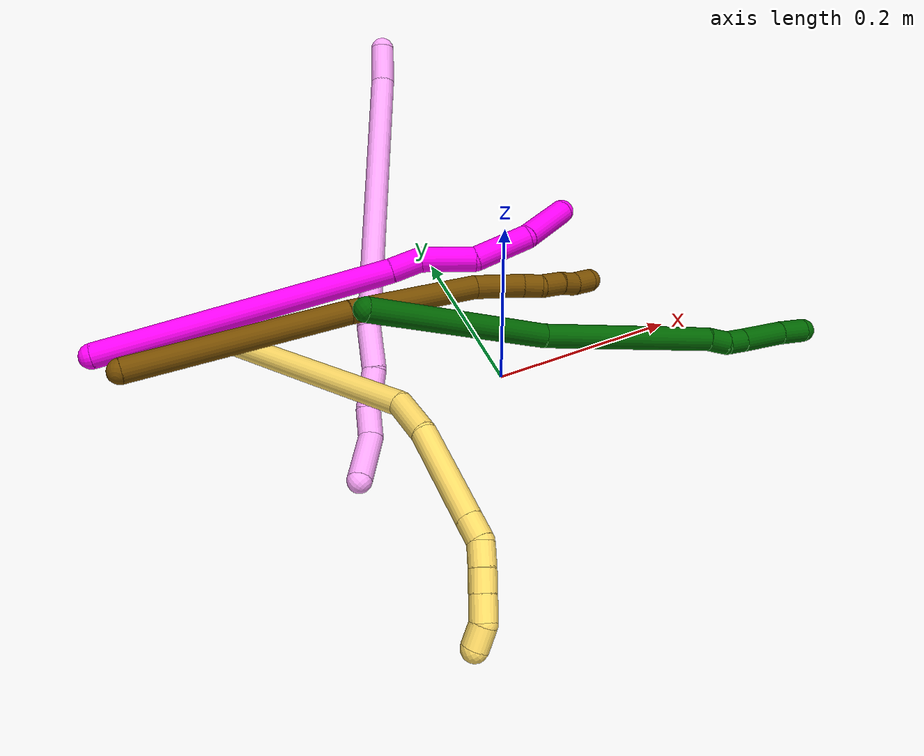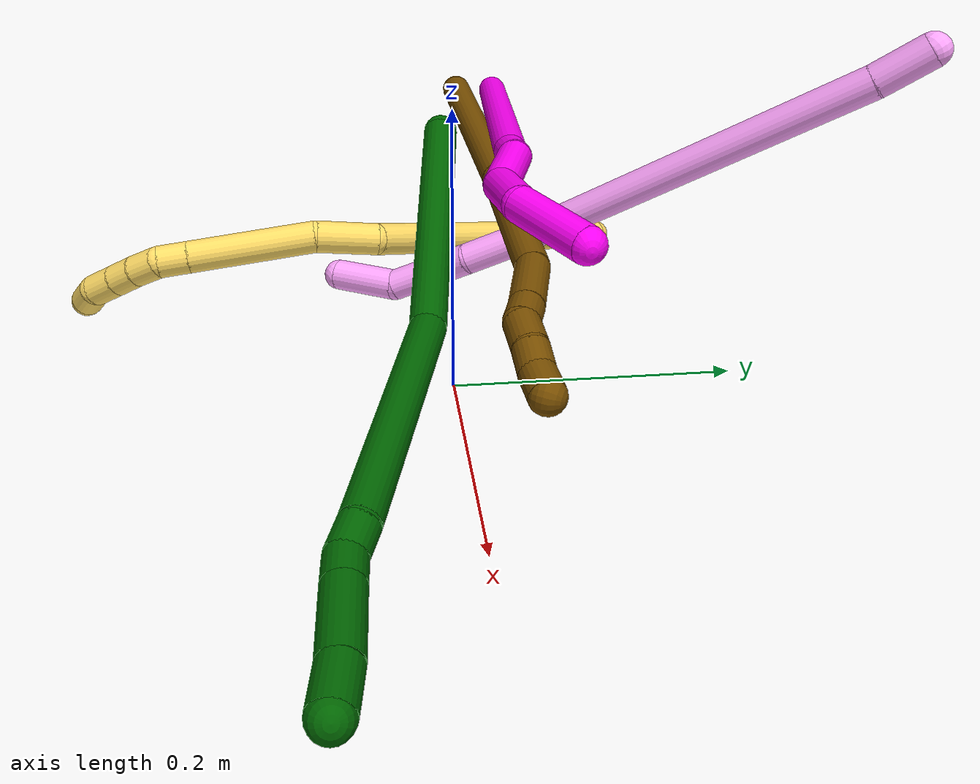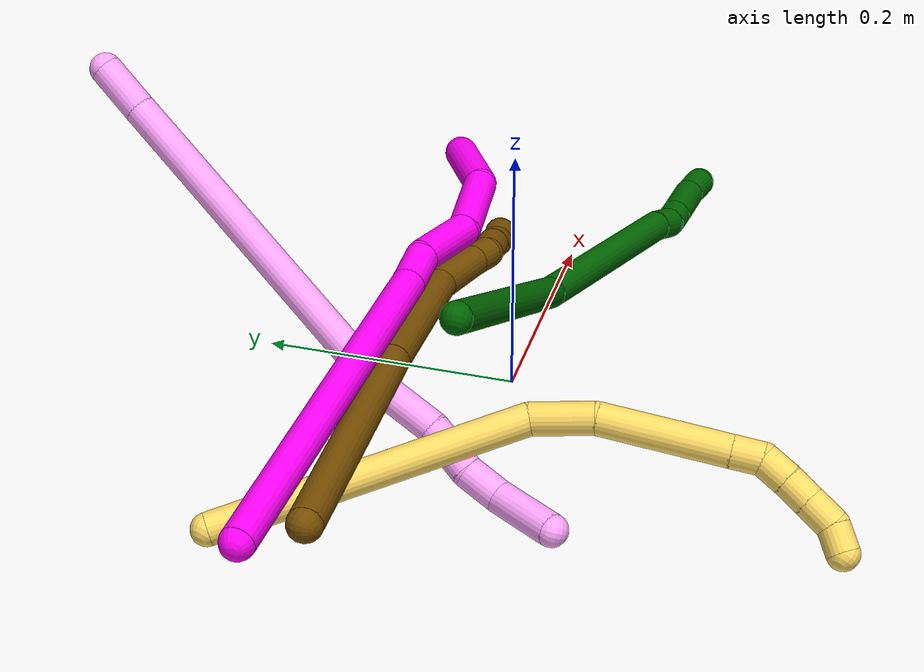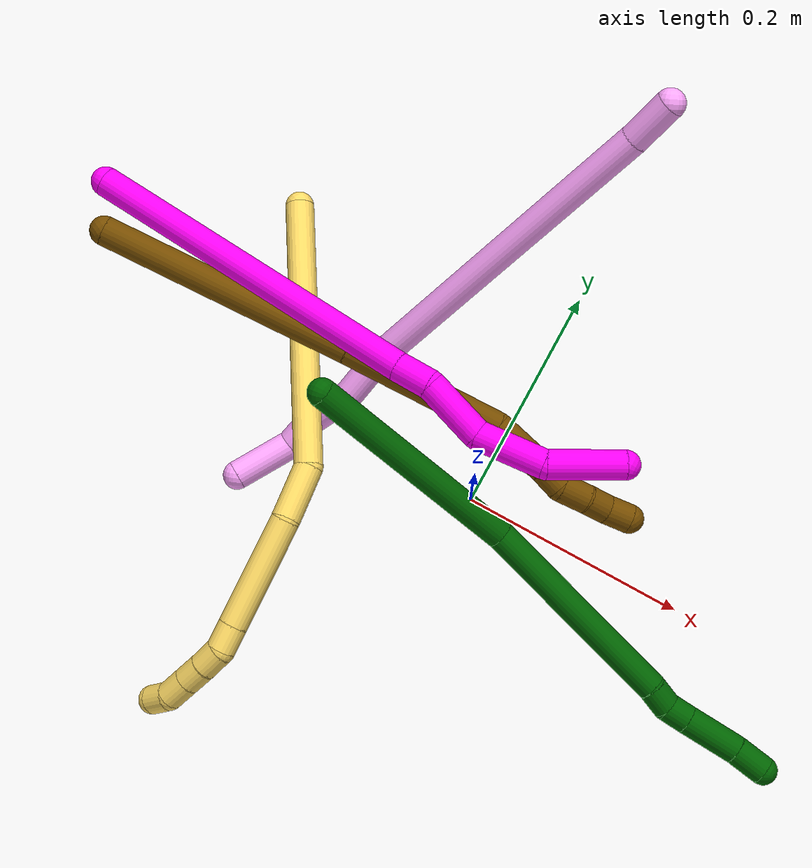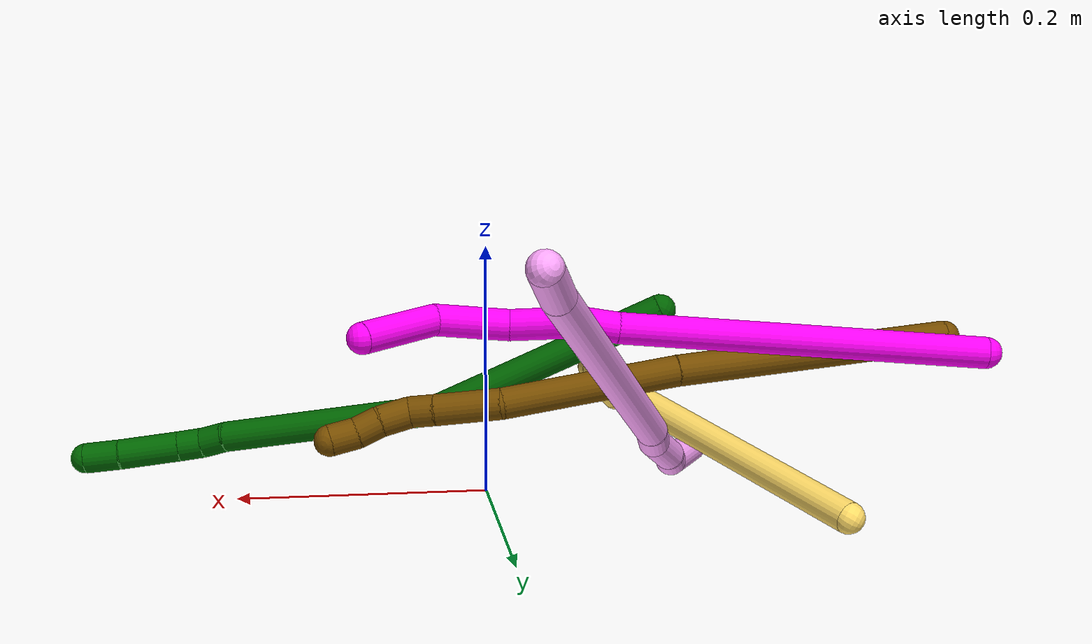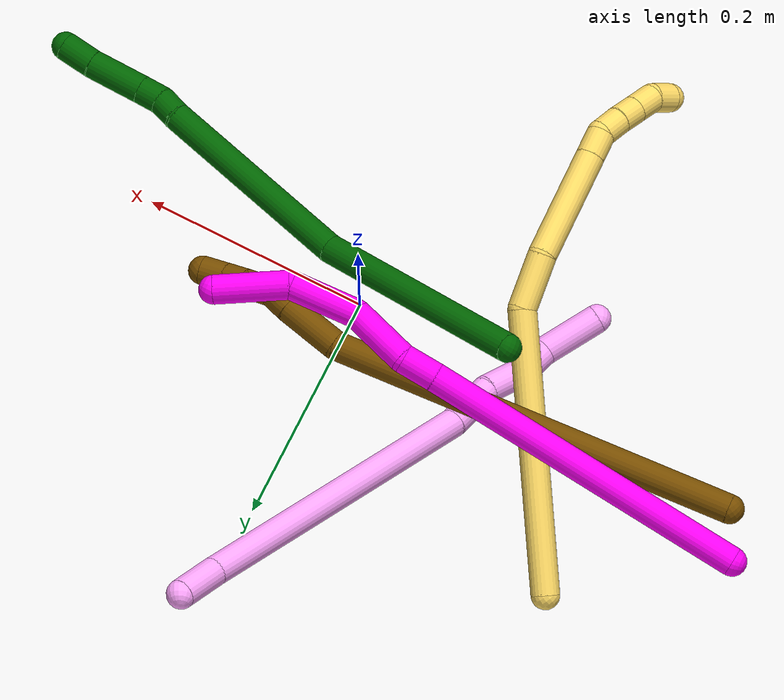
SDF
<sdf version="1.7">
 <world name="default">
  <model name="4">
   <static>0</static>
   <link name="4">
    <collision name="collision-cylinder-e_1_1_4">
     <pose>-0.008717 -0.010937 -0.015253 2.51955 -0.434778 -1.20406</pose>
     <geometry><cylinder><radius>0.0125</radius><length>0.041388</length></cylinder></geometry>
     <surface>
      <friction><ode><mu>1.16</mu><mu2>1.16</mu2><slip1>0</slip1><slip2>0</slip2></ode></friction>
      <contact><ode><kp>1e+06</kp><kd>1</kd><max_vel>0</max_vel><min_depth>0.001</min_depth></ode></contact>
     </surface>
    </collision>
    <visual name="visual-cylinder-e_1_1_4">
     <pose>-0.008717 -0.010937 -0.015253 2.51955 -0.434778 -1.20406</pose>
     <geometry><cylinder><radius>0.0125</radius><length>0.041388</length></cylinder></geometry>
     <material><ambient>1 0.65098 0.996078 1</ambient></material>
    </visual>
    <collision name="collision-cylinder-e_2_4_5">
     <pose>-0.070696 -0.108223 -0.131743 2.43539 -0.380756 -0.963587</pose>
     <geometry><cylinder><radius>0.0125</radius><length>0.28665</length></cylinder></geometry>
     <surface>
      <friction><ode><mu>1.16</mu><mu2>1.16</mu2><slip1>0</slip1><slip2>0</slip2></ode></friction>
      <contact><ode><kp>1e+06</kp><kd>1</kd><max_vel>0</max_vel><min_depth>0.001</min_depth></ode></contact>
     </surface>
    </collision>
    <visual name="visual-cylinder-e_2_4_5">
     <pose>-0.070696 -0.108223 -0.131743 2.43539 -0.380756 -0.963587</pose>
     <geometry><cylinder><radius>0.0125</radius><length>0.28665</length></cylinder></geometry>
     <material><ambient>1 0.65098 0.996078 1</ambient></material>
    </visual>
    <collision name="collision-cylinder-e_3_5_6">
     <pose>-0.129268 -0.207157 -0.252441 2.56761 -0.225188 -0.73173</pose>
     <geometry><cylinder><radius>0.0125</radius><length>0.047552</length></cylinder></geometry>
     <surface>
      <friction><ode><mu>1.16</mu><mu2>1.16</mu2><slip1>0</slip1><slip2>0</slip2></ode></friction>
      <contact><ode><kp>1e+06</kp><kd>1</kd><max_vel>0</max_vel><min_depth>0.001</min_depth></ode></contact>
     </surface>
    </collision>
    <visual name="visual-cylinder-e_3_5_6">
     <pose>-0.129268 -0.207157 -0.252441 2.56761 -0.225188 -0.73173</pose>
     <geometry><cylinder><radius>0.0125</radius><length>0.047552</length></cylinder></geometry>
     <material><ambient>1 0.65098 0.996078 1</ambient></material>
    </visual>
    <collision name="collision-cylinder-e_4_6_7">
     <pose>-0.142203 -0.233685 -0.285127 2.32972 -0.377798 -0.83704</pose>
     <geometry><cylinder><radius>0.0125</radius><length>0.041352</length></cylinder></geometry>
     <surface>
      <friction><ode><mu>1.16</mu><mu2>1.16</mu2><slip1>0</slip1><slip2>0</slip2></ode></friction>
      <contact><ode><kp>1e+06</kp><kd>1</kd><max_vel>0</max_vel><min_depth>0.001</min_depth></ode></contact>
     </surface>
    </collision>
    <visual name="visual-cylinder-e_4_6_7">
     <pose>-0.142203 -0.233685 -0.285127 2.32972 -0.377798 -0.83704</pose>
     <geometry><cylinder><radius>0.0125</radius><length>0.041352</length></cylinder></geometry>
     <material><ambient>1 0.65098 0.996078 1</ambient></material>
    </visual>
    <collision name="collision-cylinder-e_5_7_8">
     <pose>-0.153117 -0.255922 -0.310348 2.5368 -0.221691 -0.6854</pose>
     <geometry><cylinder><radius>0.0125</radius><length>0.029899</length></cylinder></geometry>
     <surface>
      <friction><ode><mu>1.16</mu><mu2>1.16</mu2><slip1>0</slip1><slip2>0</slip2></ode></friction>
      <contact><ode><kp>1e+06</kp><kd>1</kd><max_vel>0</max_vel><min_depth>0.001</min_depth></ode></contact>
     </surface>
    </collision>
    <visual name="visual-cylinder-e_5_7_8">
     <pose>-0.153117 -0.255922 -0.310348 2.5368 -0.221691 -0.6854</pose>
     <geometry><cylinder><radius>0.0125</radius><length>0.029899</length></cylinder></geometry>
     <material><ambient>1 0.65098 0.996078 1</ambient></material>
    </visual>
    <collision name="collision-cylinder-e_6_8_2">
     <pose>-0.15445 -0.286512 -0.336678 2.14208 0.073615 0.134686</pose>
     <geometry><cylinder><radius>0.0125</radius><length>0.053159</length></cylinder></geometry>
     <surface>
      <friction><ode><mu>1.16</mu><mu2>1.16</mu2><slip1>0</slip1><slip2>0</slip2></ode></friction>
      <contact><ode><kp>1e+06</kp><kd>1</kd><max_vel>0</max_vel><min_depth>0.001</min_depth></ode></contact>
     </surface>
    </collision>
    <visual name="visual-cylinder-e_6_8_2">
     <pose>-0.15445 -0.286512 -0.336678 2.14208 0.073615 0.134686</pose>
     <geometry><cylinder><radius>0.0125</radius><length>0.053159</length></cylinder></geometry>
     <material><ambient>1 0.65098 0.996078 1</ambient></material>
    </visual>
    <collision name="collision-sphere-2">
     <pose>-0.152495 -0.30881 -0.351011 0 -0 0</pose>
     <geometry><sphere><radius>0.0125</radius></sphere></geometry>
     <surface>
      <friction><ode><mu>1.16</mu><mu2>1.16</mu2><slip1>0</slip1><slip2>0</slip2></ode></friction>
      <contact><ode><kp>1e+06</kp><kd>1</kd><max_vel>0</max_vel><min_depth>0.001</min_depth></ode></contact>
     </surface>
    </collision>
    <visual name="visual-sphere-2">
     <pose>-0.152495 -0.30881 -0.351011 0 -0 0</pose>
     <geometry><sphere><radius>0.0125</radius></sphere></geometry>
     <material><ambient>1 0.65098 0.996078 1</ambient></material>
    </visual>
    <collision name="collision-sphere-4">
     <pose>-0.017433 -0.021873 -0.030506 0 -0 0</pose>
     <geometry><sphere><radius>0.0125</radius></sphere></geometry>
     <surface>
      <friction><ode><mu>1.16</mu><mu2>1.16</mu2><slip1>0</slip1><slip2>0</slip2></ode></friction>
      <contact><ode><kp>1e+06</kp><kd>1</kd><max_vel>0</max_vel><min_depth>0.001</min_depth></ode></contact>
     </surface>
    </collision>
    <visual name="visual-sphere-4">
     <pose>-0.017433 -0.021873 -0.030506 0 -0 0</pose>
     <geometry><sphere><radius>0.0125</radius></sphere></geometry>
     <material><ambient>1 0.65098 0.996078 1</ambient></material>
    </visual>
    <collision name="collision-sphere-1">
     <geometry><sphere><radius>0.0125</radius></sphere></geometry>
     <surface>
      <friction><ode><mu>1.16</mu><mu2>1.16</mu2><slip1>0</slip1><slip2>0</slip2></ode></friction>
      <contact><ode><kp>1e+06</kp><kd>1</kd><max_vel>0</max_vel><min_depth>0.001</min_depth></ode></contact>
     </surface>
    </collision>
    <visual name="visual-sphere-1">
     <geometry><sphere><radius>0.0125</radius></sphere></geometry>
     <material><ambient>1 0.65098 0.996078 1</ambient></material>
    </visual>
    <collision name="collision-sphere-8">
     <pose>-0.156405 -0.264214 -0.322345 0 -0 0</pose>
     <geometry><sphere><radius>0.0125</radius></sphere></geometry>
     <surface>
      <friction><ode><mu>1.16</mu><mu2>1.16</mu2><slip1>0</slip1><slip2>0</slip2></ode></friction>
      <contact><ode><kp>1e+06</kp><kd>1</kd><max_vel>0</max_vel><min_depth>0.001</min_depth></ode></contact>
     </surface>
    </collision>
    <visual name="visual-sphere-8">
     <pose>-0.156405 -0.264214 -0.322345 0 -0 0</pose>
     <geometry><sphere><radius>0.0125</radius></sphere></geometry>
     <material><ambient>1 0.65098 0.996078 1</ambient></material>
    </visual>
    <collision name="collision-sphere-5">
     <pose>-0.123959 -0.194573 -0.232979 0 -0 0</pose>
     <geometry><sphere><radius>0.0125</radius></sphere></geometry>
     <surface>
      <friction><ode><mu>1.16</mu><mu2>1.16</mu2><slip1>0</slip1><slip2>0</slip2></ode></friction>
      <contact><ode><kp>1e+06</kp><kd>1</kd><max_vel>0</max_vel><min_depth>0.001</min_depth></ode></contact>
     </surface>
    </collision>
    <visual name="visual-sphere-5">
     <pose>-0.123959 -0.194573 -0.232979 0 -0 0</pose>
     <geometry><sphere><radius>0.0125</radius></sphere></geometry>
     <material><ambient>1 0.65098 0.996078 1</ambient></material>
    </visual>
    <collision name="collision-sphere-6">
     <pose>-0.134577 -0.219741 -0.271902 0 -0 0</pose>
     <geometry><sphere><radius>0.0125</radius></sphere></geometry>
     <surface>
      <friction><ode><mu>1.16</mu><mu2>1.16</mu2><slip1>0</slip1><slip2>0</slip2></ode></friction>
      <contact><ode><kp>1e+06</kp><kd>1</kd><max_vel>0</max_vel><min_depth>0.001</min_depth></ode></contact>
     </surface>
    </collision>
    <visual name="visual-sphere-6">
     <pose>-0.134577 -0.219741 -0.271902 0 -0 0</pose>
     <geometry><sphere><radius>0.0125</radius></sphere></geometry>
     <material><ambient>1 0.65098 0.996078 1</ambient></material>
    </visual>
    <collision name="collision-sphere-7">
     <pose>-0.14983 -0.247629 -0.298351 0 -0 0</pose>
     <geometry><sphere><radius>0.0125</radius></sphere></geometry>
     <surface>
      <friction><ode><mu>1.16</mu><mu2>1.16</mu2><slip1>0</slip1><slip2>0</slip2></ode></friction>
      <contact><ode><kp>1e+06</kp><kd>1</kd><max_vel>0</max_vel><min_depth>0.001</min_depth></ode></contact>
     </surface>
    </collision>
    <visual name="visual-sphere-7">
     <pose>-0.14983 -0.247629 -0.298351 0 -0 0</pose>
     <geometry><sphere><radius>0.0125</radius></sphere></geometry>
     <material><ambient>1 0.65098 0.996078 1</ambient></material>
    </visual>
    <inertial>
     <pose>-0.090883 -0.147743 -0.178733 0 -0 0</pose>
     <mass>0.5</mass>
     <inertia>
      <ixx>-0.000458</ixx>
      <ixy>0</ixy>
      <ixz>0</ixz>
      <iyy>-0.002032</iyy>
      <iyz>0</iyz>
      <izz>0.001932</izz>
     </inertia>
    </inertial>
   </link>
   <pose>-0.003106 0.321794 0.230692 -0.398194 -1.17948 -0.72997</pose>
  </model>
  <model name="5">
   <static>0</static>
   <link name="5">
    <collision name="collision-cylinder-e_1_1_4">
     <pose>-0.002562 -0.079905 -0.091088 2.4215 -0.021137 -0.056135</pose>
     <geometry><cylinder><radius>0.0125</radius><length>0.242391</length></cylinder></geometry>
     <surface>
      <friction><ode><mu>1.16</mu><mu2>1.16</mu2><slip1>0</slip1><slip2>0</slip2></ode></friction>
      <contact><ode><kp>1e+06</kp><kd>1</kd><max_vel>0</max_vel><min_depth>0.001</min_depth></ode></contact>
     </surface>
    </collision>
    <visual name="visual-cylinder-e_1_1_4">
     <pose>-0.002562 -0.079905 -0.091088 2.4215 -0.021137 -0.056135</pose>
     <geometry><cylinder><radius>0.0125</radius><length>0.242391</length></cylinder></geometry>
     <material><ambient>1 0.858824 0.4 1</ambient></material>
    </visual>
    <collision name="collision-cylinder-e_2_4_5">
     <pose>-0.001821 -0.181717 -0.192357 2.00583 0.135857 0.212471</pose>
     <geometry><cylinder><radius>0.0125</radius><length>0.048765</length></cylinder></geometry>
     <surface>
      <friction><ode><mu>1.16</mu><mu2>1.16</mu2><slip1>0</slip1><slip2>0</slip2></ode></friction>
      <contact><ode><kp>1e+06</kp><kd>1</kd><max_vel>0</max_vel><min_depth>0.001</min_depth></ode></contact>
     </surface>
    </collision>
    <visual name="visual-cylinder-e_2_4_5">
     <pose>-0.001821 -0.181717 -0.192357 2.00583 0.135857 0.212471</pose>
     <geometry><cylinder><radius>0.0125</radius><length>0.048765</length></cylinder></geometry>
     <material><ambient>1 0.858824 0.4 1</ambient></material>
    </visual>
    <collision name="collision-cylinder-e_3_5_6">
     <pose>-0.000126 -0.25118 -0.214093 1.80916 -0.032843 -0.041777</pose>
     <geometry><cylinder><radius>0.0125</radius><length>0.09793</length></cylinder></geometry>
     <surface>
      <friction><ode><mu>1.16</mu><mu2>1.16</mu2><slip1>0</slip1><slip2>0</slip2></ode></friction>
      <contact><ode><kp>1e+06</kp><kd>1</kd><max_vel>0</max_vel><min_depth>0.001</min_depth></ode></contact>
     </surface>
    </collision>
    <visual name="visual-cylinder-e_3_5_6">
     <pose>-0.000126 -0.25118 -0.214093 1.80916 -0.032843 -0.041777</pose>
     <geometry><cylinder><radius>0.0125</radius><length>0.09793</length></cylinder></geometry>
     <material><ambient>1 0.858824 0.4 1</ambient></material>
    </visual>
    <collision name="collision-cylinder-e_4_6_7">
     <pose>-0.002123 -0.309974 -0.228392 1.81026 -0.033572 -0.042752</pose>
     <geometry><cylinder><radius>0.0125</radius><length>0.02315</length></cylinder></geometry>
     <surface>
      <friction><ode><mu>1.16</mu><mu2>1.16</mu2><slip1>0</slip1><slip2>0</slip2></ode></friction>
      <contact><ode><kp>1e+06</kp><kd>1</kd><max_vel>0</max_vel><min_depth>0.001</min_depth></ode></contact>
     </surface>
    </collision>
    <visual name="visual-cylinder-e_4_6_7">
     <pose>-0.002123 -0.309974 -0.228392 1.81026 -0.033572 -0.042752</pose>
     <geometry><cylinder><radius>0.0125</radius><length>0.02315</length></cylinder></geometry>
     <material><ambient>1 0.858824 0.4 1</ambient></material>
    </visual>
    <collision name="collision-cylinder-e_5_7_8">
     <pose>-0.00391 -0.33196 -0.228498 1.33011 -0.125724 -0.098647</pose>
     <geometry><cylinder><radius>0.0125</radius><length>0.02231</length></cylinder></geometry>
     <surface>
      <friction><ode><mu>1.16</mu><mu2>1.16</mu2><slip1>0</slip1><slip2>0</slip2></ode></friction>
      <contact><ode><kp>1e+06</kp><kd>1</kd><max_vel>0</max_vel><min_depth>0.001</min_depth></ode></contact>
     </surface>
    </collision>
    <visual name="visual-cylinder-e_5_7_8">
     <pose>-0.00391 -0.33196 -0.228498 1.33011 -0.125724 -0.098647</pose>
     <geometry><cylinder><radius>0.0125</radius><length>0.02231</length></cylinder></geometry>
     <material><ambient>1 0.858824 0.4 1</ambient></material>
    </visual>
    <collision name="collision-cylinder-e_6_8_9">
     <pose>-0.006908 -0.352534 -0.222784 1.2674 -0.154068 -0.113312</pose>
     <geometry><cylinder><radius>0.0125</radius><length>0.020839</length></cylinder></geometry>
     <surface>
      <friction><ode><mu>1.16</mu><mu2>1.16</mu2><slip1>0</slip1><slip2>0</slip2></ode></friction>
      <contact><ode><kp>1e+06</kp><kd>1</kd><max_vel>0</max_vel><min_depth>0.001</min_depth></ode></contact>
     </surface>
    </collision>
    <visual name="visual-cylinder-e_6_8_9">
     <pose>-0.006908 -0.352534 -0.222784 1.2674 -0.154068 -0.113312</pose>
     <geometry><cylinder><radius>0.0125</radius><length>0.020839</length></cylinder></geometry>
     <material><ambient>1 0.858824 0.4 1</ambient></material>
    </visual>
    <collision name="collision-cylinder-e_7_9_10">
     <pose>-0.010307 -0.373485 -0.216222 1.26717 -0.153242 -0.112676</pose>
     <geometry><cylinder><radius>0.0125</radius><length>0.023595</length></cylinder></geometry>
     <surface>
      <friction><ode><mu>1.16</mu><mu2>1.16</mu2><slip1>0</slip1><slip2>0</slip2></ode></friction>
      <contact><ode><kp>1e+06</kp><kd>1</kd><max_vel>0</max_vel><min_depth>0.001</min_depth></ode></contact>
     </surface>
    </collision>
    <visual name="visual-cylinder-e_7_9_10">
     <pose>-0.010307 -0.373485 -0.216222 1.26717 -0.153242 -0.112676</pose>
     <geometry><cylinder><radius>0.0125</radius><length>0.023595</length></cylinder></geometry>
     <material><ambient>1 0.858824 0.4 1</ambient></material>
    </visual>
    <collision name="collision-cylinder-e_8_10_2">
     <pose>-0.014233 -0.392038 -0.20561 0.806048 -0.203614 -0.087059</pose>
     <geometry><cylinder><radius>0.0125</radius><length>0.02102</length></cylinder></geometry>
     <surface>
      <friction><ode><mu>1.16</mu><mu2>1.16</mu2><slip1>0</slip1><slip2>0</slip2></ode></friction>
      <contact><ode><kp>1e+06</kp><kd>1</kd><max_vel>0</max_vel><min_depth>0.001</min_depth></ode></contact>
     </surface>
    </collision>
    <visual name="visual-cylinder-e_8_10_2">
     <pose>-0.014233 -0.392038 -0.20561 0.806048 -0.203614 -0.087059</pose>
     <geometry><cylinder><radius>0.0125</radius><length>0.02102</length></cylinder></geometry>
     <material><ambient>1 0.858824 0.4 1</ambient></material>
    </visual>
    <collision name="collision-sphere-2">
     <pose>-0.016359 -0.399465 -0.198484 0 -0 0</pose>
     <geometry><sphere><radius>0.0125</radius></sphere></geometry>
     <surface>
      <friction><ode><mu>1.16</mu><mu2>1.16</mu2><slip1>0</slip1><slip2>0</slip2></ode></friction>
      <contact><ode><kp>1e+06</kp><kd>1</kd><max_vel>0</max_vel><min_depth>0.001</min_depth></ode></contact>
     </surface>
    </collision>
    <visual name="visual-sphere-2">
     <pose>-0.016359 -0.399465 -0.198484 0 -0 0</pose>
     <geometry><sphere><radius>0.0125</radius></sphere></geometry>
     <material><ambient>1 0.858824 0.4 1</ambient></material>
    </visual>
    <collision name="collision-sphere-10">
     <pose>-0.012108 -0.384611 -0.212736 0 -0 0</pose>
     <geometry><sphere><radius>0.0125</radius></sphere></geometry>
     <surface>
      <friction><ode><mu>1.16</mu><mu2>1.16</mu2><slip1>0</slip1><slip2>0</slip2></ode></friction>
      <contact><ode><kp>1e+06</kp><kd>1</kd><max_vel>0</max_vel><min_depth>0.001</min_depth></ode></contact>
     </surface>
    </collision>
    <visual name="visual-sphere-10">
     <pose>-0.012108 -0.384611 -0.212736 0 -0 0</pose>
     <geometry><sphere><radius>0.0125</radius></sphere></geometry>
     <material><ambient>1 0.858824 0.4 1</ambient></material>
    </visual>
    <collision name="collision-sphere-9">
     <pose>-0.008507 -0.36236 -0.219708 0 -0 0</pose>
     <geometry><sphere><radius>0.0125</radius></sphere></geometry>
     <surface>
      <friction><ode><mu>1.16</mu><mu2>1.16</mu2><slip1>0</slip1><slip2>0</slip2></ode></friction>
      <contact><ode><kp>1e+06</kp><kd>1</kd><max_vel>0</max_vel><min_depth>0.001</min_depth></ode></contact>
     </surface>
    </collision>
    <visual name="visual-sphere-9">
     <pose>-0.008507 -0.36236 -0.219708 0 -0 0</pose>
     <geometry><sphere><radius>0.0125</radius></sphere></geometry>
     <material><ambient>1 0.858824 0.4 1</ambient></material>
    </visual>
    <collision name="collision-sphere-4">
     <pose>-0.005123 -0.159809 -0.182176 0 -0 0</pose>
     <geometry><sphere><radius>0.0125</radius></sphere></geometry>
     <surface>
      <friction><ode><mu>1.16</mu><mu2>1.16</mu2><slip1>0</slip1><slip2>0</slip2></ode></friction>
      <contact><ode><kp>1e+06</kp><kd>1</kd><max_vel>0</max_vel><min_depth>0.001</min_depth></ode></contact>
     </surface>
    </collision>
    <visual name="visual-sphere-4">
     <pose>-0.005123 -0.159809 -0.182176 0 -0 0</pose>
     <geometry><sphere><radius>0.0125</radius></sphere></geometry>
     <material><ambient>1 0.858824 0.4 1</ambient></material>
    </visual>
    <collision name="collision-sphere-1">
     <geometry><sphere><radius>0.0125</radius></sphere></geometry>
     <surface>
      <friction><ode><mu>1.16</mu><mu2>1.16</mu2><slip1>0</slip1><slip2>0</slip2></ode></friction>
      <contact><ode><kp>1e+06</kp><kd>1</kd><max_vel>0</max_vel><min_depth>0.001</min_depth></ode></contact>
     </surface>
    </collision>
    <visual name="visual-sphere-1">
     <geometry><sphere><radius>0.0125</radius></sphere></geometry>
     <material><ambient>1 0.858824 0.4 1</ambient></material>
    </visual>
    <collision name="collision-sphere-8">
     <pose>-0.005309 -0.342708 -0.22586 0 -0 0</pose>
     <geometry><sphere><radius>0.0125</radius></sphere></geometry>
     <surface>
      <friction><ode><mu>1.16</mu><mu2>1.16</mu2><slip1>0</slip1><slip2>0</slip2></ode></friction>
      <contact><ode><kp>1e+06</kp><kd>1</kd><max_vel>0</max_vel><min_depth>0.001</min_depth></ode></contact>
     </surface>
    </collision>
    <visual name="visual-sphere-8">
     <pose>-0.005309 -0.342708 -0.22586 0 -0 0</pose>
     <geometry><sphere><radius>0.0125</radius></sphere></geometry>
     <material><ambient>1 0.858824 0.4 1</ambient></material>
    </visual>
    <collision name="collision-sphere-5">
     <pose>0.001482 -0.203625 -0.202538 0 -0 0</pose>
     <geometry><sphere><radius>0.0125</radius></sphere></geometry>
     <surface>
      <friction><ode><mu>1.16</mu><mu2>1.16</mu2><slip1>0</slip1><slip2>0</slip2></ode></friction>
      <contact><ode><kp>1e+06</kp><kd>1</kd><max_vel>0</max_vel><min_depth>0.001</min_depth></ode></contact>
     </surface>
    </collision>
    <visual name="visual-sphere-5">
     <pose>0.001482 -0.203625 -0.202538 0 -0 0</pose>
     <geometry><sphere><radius>0.0125</radius></sphere></geometry>
     <material><ambient>1 0.858824 0.4 1</ambient></material>
    </visual>
    <collision name="collision-sphere-6">
     <pose>-0.001734 -0.298735 -0.225648 0 -0 0</pose>
     <geometry><sphere><radius>0.0125</radius></sphere></geometry>
     <surface>
      <friction><ode><mu>1.16</mu><mu2>1.16</mu2><slip1>0</slip1><slip2>0</slip2></ode></friction>
      <contact><ode><kp>1e+06</kp><kd>1</kd><max_vel>0</max_vel><min_depth>0.001</min_depth></ode></contact>
     </surface>
    </collision>
    <visual name="visual-sphere-6">
     <pose>-0.001734 -0.298735 -0.225648 0 -0 0</pose>
     <geometry><sphere><radius>0.0125</radius></sphere></geometry>
     <material><ambient>1 0.858824 0.4 1</ambient></material>
    </visual>
    <collision name="collision-sphere-7">
     <pose>-0.002511 -0.321212 -0.231136 0 -0 0</pose>
     <geometry><sphere><radius>0.0125</radius></sphere></geometry>
     <surface>
      <friction><ode><mu>1.16</mu><mu2>1.16</mu2><slip1>0</slip1><slip2>0</slip2></ode></friction>
      <contact><ode><kp>1e+06</kp><kd>1</kd><max_vel>0</max_vel><min_depth>0.001</min_depth></ode></contact>
     </surface>
    </collision>
    <visual name="visual-sphere-7">
     <pose>-0.002511 -0.321212 -0.231136 0 -0 0</pose>
     <geometry><sphere><radius>0.0125</radius></sphere></geometry>
     <material><ambient>1 0.858824 0.4 1</ambient></material>
    </visual>
    <inertial>
     <pose>-0.003089 -0.183618 -0.153753 0 -0 0</pose>
     <mass>0.5</mass>
     <inertia>
      <ixx>0.001226</ixx>
      <ixy>0</ixy>
      <ixz>0</ixz>
      <iyy>-0.001019</iyy>
      <iyz>0</iyz>
      <izz>0.000899</izz>
     </inertia>
    </inertial>
   </link>
   <pose>-0.254742 0.154739 0.013693 2.73007 -1.01392 -2.97903</pose>
  </model>
  <model name="6">
   <static>0</static>
   <link name="6">
    <collision name="collision-cylinder-e_1_1_4">
     <pose>0.080673 -0.008829 0.056844 0.15408 0.95135 0.079486</pose>
     <geometry><cylinder><radius>0.0125</radius><length>0.198164</length></cylinder></geometry>
     <surface>
      <friction><ode><mu>1.16</mu><mu2>1.16</mu2><slip1>0</slip1><slip2>0</slip2></ode></friction>
      <contact><ode><kp>1e+06</kp><kd>1</kd><max_vel>0</max_vel><min_depth>0.001</min_depth></ode></contact>
     </surface>
    </collision>
    <visual name="visual-cylinder-e_1_1_4">
     <pose>0.080673 -0.008829 0.056844 0.15408 0.95135 0.079486</pose>
     <geometry><cylinder><radius>0.0125</radius><length>0.198164</length></cylinder></geometry>
     <material><ambient>0 0.392157 0.003922 1</ambient></material>
    </visual>
    <collision name="collision-cylinder-e_2_4_5">
     <pose>0.218168 -0.040889 0.180705 0.333688 0.67542 0.118141</pose>
     <geometry><cylinder><radius>0.0125</radius><length>0.181767</length></cylinder></geometry>
     <surface>
      <friction><ode><mu>1.16</mu><mu2>1.16</mu2><slip1>0</slip1><slip2>0</slip2></ode></friction>
      <contact><ode><kp>1e+06</kp><kd>1</kd><max_vel>0</max_vel><min_depth>0.001</min_depth></ode></contact>
     </surface>
    </collision>
    <visual name="visual-cylinder-e_2_4_5">
     <pose>0.218168 -0.040889 0.180705 0.333688 0.67542 0.118141</pose>
     <geometry><cylinder><radius>0.0125</radius><length>0.181767</length></cylinder></geometry>
     <material><ambient>0 0.392157 0.003922 1</ambient></material>
    </visual>
    <collision name="collision-cylinder-e_3_5_6">
     <pose>0.2827 -0.067706 0.254298 0.499297 0.799795 0.214707</pose>
     <geometry><cylinder><radius>0.0125</radius><length>0.021497</length></cylinder></geometry>
     <surface>
      <friction><ode><mu>1.16</mu><mu2>1.16</mu2><slip1>0</slip1><slip2>0</slip2></ode></friction>
      <contact><ode><kp>1e+06</kp><kd>1</kd><max_vel>0</max_vel><min_depth>0.001</min_depth></ode></contact>
     </surface>
    </collision>
    <visual name="visual-cylinder-e_3_5_6">
     <pose>0.2827 -0.067706 0.254298 0.499297 0.799795 0.214707</pose>
     <geometry><cylinder><radius>0.0125</radius><length>0.021497</length></cylinder></geometry>
     <material><ambient>0 0.392157 0.003922 1</ambient></material>
    </visual>
    <collision name="collision-cylinder-e_4_6_7">
     <pose>0.296668 -0.07182 0.268961 0.065038 0.657662 0.022199</pose>
     <geometry><cylinder><radius>0.0125</radius><length>0.020481</length></cylinder></geometry>
     <surface>
      <friction><ode><mu>1.16</mu><mu2>1.16</mu2><slip1>0</slip1><slip2>0</slip2></ode></friction>
      <contact><ode><kp>1e+06</kp><kd>1</kd><max_vel>0</max_vel><min_depth>0.001</min_depth></ode></contact>
     </surface>
    </collision>
    <visual name="visual-cylinder-e_4_6_7">
     <pose>0.296668 -0.07182 0.268961 0.065038 0.657662 0.022199</pose>
     <geometry><cylinder><radius>0.0125</radius><length>0.020481</length></cylinder></geometry>
     <material><ambient>0 0.392157 0.003922 1</ambient></material>
    </visual>
    <collision name="collision-cylinder-e_5_7_8">
     <pose>0.317536 -0.07321 0.29665 0.044013 0.639989 0.014587</pose>
     <geometry><cylinder><radius>0.0125</radius><length>0.048923</length></cylinder></geometry>
     <surface>
      <friction><ode><mu>1.16</mu><mu2>1.16</mu2><slip1>0</slip1><slip2>0</slip2></ode></friction>
      <contact><ode><kp>1e+06</kp><kd>1</kd><max_vel>0</max_vel><min_depth>0.001</min_depth></ode></contact>
     </surface>
    </collision>
    <visual name="visual-cylinder-e_5_7_8">
     <pose>0.317536 -0.07321 0.29665 0.044013 0.639989 0.014587</pose>
     <geometry><cylinder><radius>0.0125</radius><length>0.048923</length></cylinder></geometry>
     <material><ambient>0 0.392157 0.003922 1</ambient></material>
    </visual>
    <collision name="collision-cylinder-e_6_8_2">
     <pose>0.340827 -0.076012 0.327808 0.166241 0.637682 0.05499</pose>
     <geometry><cylinder><radius>0.0125</radius><length>0.029167</length></cylinder></geometry>
     <surface>
      <friction><ode><mu>1.16</mu><mu2>1.16</mu2><slip1>0</slip1><slip2>0</slip2></ode></friction>
      <contact><ode><kp>1e+06</kp><kd>1</kd><max_vel>0</max_vel><min_depth>0.001</min_depth></ode></contact>
     </surface>
    </collision>
    <visual name="visual-cylinder-e_6_8_2">
     <pose>0.340827 -0.076012 0.327808 0.166241 0.637682 0.05499</pose>
     <geometry><cylinder><radius>0.0125</radius><length>0.029167</length></cylinder></geometry>
     <material><ambient>0 0.392157 0.003922 1</ambient></material>
    </visual>
    <collision name="collision-sphere-2">
     <pose>0.349509 -0.077951 0.339364 0 -0 0</pose>
     <geometry><sphere><radius>0.0125</radius></sphere></geometry>
     <surface>
      <friction><ode><mu>1.16</mu><mu2>1.16</mu2><slip1>0</slip1><slip2>0</slip2></ode></friction>
      <contact><ode><kp>1e+06</kp><kd>1</kd><max_vel>0</max_vel><min_depth>0.001</min_depth></ode></contact>
     </surface>
    </collision>
    <visual name="visual-sphere-2">
     <pose>0.349509 -0.077951 0.339364 0 -0 0</pose>
     <geometry><sphere><radius>0.0125</radius></sphere></geometry>
     <material><ambient>0 0.392157 0.003922 1</ambient></material>
    </visual>
    <collision name="collision-sphere-4">
     <pose>0.161345 -0.017657 0.113688 0 -0 0</pose>
     <geometry><sphere><radius>0.0125</radius></sphere></geometry>
     <surface>
      <friction><ode><mu>1.16</mu><mu2>1.16</mu2><slip1>0</slip1><slip2>0</slip2></ode></friction>
      <contact><ode><kp>1e+06</kp><kd>1</kd><max_vel>0</max_vel><min_depth>0.001</min_depth></ode></contact>
     </surface>
    </collision>
    <visual name="visual-sphere-4">
     <pose>0.161345 -0.017657 0.113688 0 -0 0</pose>
     <geometry><sphere><radius>0.0125</radius></sphere></geometry>
     <material><ambient>0 0.392157 0.003922 1</ambient></material>
    </visual>
    <collision name="collision-sphere-1">
     <geometry><sphere><radius>0.0125</radius></sphere></geometry>
     <surface>
      <friction><ode><mu>1.16</mu><mu2>1.16</mu2><slip1>0</slip1><slip2>0</slip2></ode></friction>
      <contact><ode><kp>1e+06</kp><kd>1</kd><max_vel>0</max_vel><min_depth>0.001</min_depth></ode></contact>
     </surface>
    </collision>
    <visual name="visual-sphere-1">
     <geometry><sphere><radius>0.0125</radius></sphere></geometry>
     <material><ambient>0 0.392157 0.003922 1</ambient></material>
    </visual>
    <collision name="collision-sphere-8">
     <pose>0.332144 -0.074073 0.316252 0 -0 0</pose>
     <geometry><sphere><radius>0.0125</radius></sphere></geometry>
     <surface>
      <friction><ode><mu>1.16</mu><mu2>1.16</mu2><slip1>0</slip1><slip2>0</slip2></ode></friction>
      <contact><ode><kp>1e+06</kp><kd>1</kd><max_vel>0</max_vel><min_depth>0.001</min_depth></ode></contact>
     </surface>
    </collision>
    <visual name="visual-sphere-8">
     <pose>0.332144 -0.074073 0.316252 0 -0 0</pose>
     <geometry><sphere><radius>0.0125</radius></sphere></geometry>
     <material><ambient>0 0.392157 0.003922 1</ambient></material>
    </visual>
    <collision name="collision-sphere-5">
     <pose>0.27499 -0.06412 0.247722 0 -0 0</pose>
     <geometry><sphere><radius>0.0125</radius></sphere></geometry>
     <surface>
      <friction><ode><mu>1.16</mu><mu2>1.16</mu2><slip1>0</slip1><slip2>0</slip2></ode></friction>
      <contact><ode><kp>1e+06</kp><kd>1</kd><max_vel>0</max_vel><min_depth>0.001</min_depth></ode></contact>
     </surface>
    </collision>
    <visual name="visual-sphere-5">
     <pose>0.27499 -0.06412 0.247722 0 -0 0</pose>
     <geometry><sphere><radius>0.0125</radius></sphere></geometry>
     <material><ambient>0 0.392157 0.003922 1</ambient></material>
    </visual>
    <collision name="collision-sphere-6">
     <pose>0.290409 -0.071293 0.260874 0 -0 0</pose>
     <geometry><sphere><radius>0.0125</radius></sphere></geometry>
     <surface>
      <friction><ode><mu>1.16</mu><mu2>1.16</mu2><slip1>0</slip1><slip2>0</slip2></ode></friction>
      <contact><ode><kp>1e+06</kp><kd>1</kd><max_vel>0</max_vel><min_depth>0.001</min_depth></ode></contact>
     </surface>
    </collision>
    <visual name="visual-sphere-6">
     <pose>0.290409 -0.071293 0.260874 0 -0 0</pose>
     <geometry><sphere><radius>0.0125</radius></sphere></geometry>
     <material><ambient>0 0.392157 0.003922 1</ambient></material>
    </visual>
    <collision name="collision-sphere-7">
     <pose>0.302928 -0.072346 0.277049 0 -0 0</pose>
     <geometry><sphere><radius>0.0125</radius></sphere></geometry>
     <surface>
      <friction><ode><mu>1.16</mu><mu2>1.16</mu2><slip1>0</slip1><slip2>0</slip2></ode></friction>
      <contact><ode><kp>1e+06</kp><kd>1</kd><max_vel>0</max_vel><min_depth>0.001</min_depth></ode></contact>
     </surface>
    </collision>
    <visual name="visual-sphere-7">
     <pose>0.302928 -0.072346 0.277049 0 -0 0</pose>
     <geometry><sphere><radius>0.0125</radius></sphere></geometry>
     <material><ambient>0 0.392157 0.003922 1</ambient></material>
    </visual>
    <inertial>
     <pose>0.186543 -0.035814 0.158321 0 -0 0</pose>
     <mass>0.5</mass>
     <inertia>
      <ixx>0.000892</ixx>
      <ixy>0</ixy>
      <ixz>0</ixz>
      <iyy>0.001231</iyy>
      <iyz>0</iyz>
      <izz>-0.000646</izz>
     </inertia>
    </inertial>
   </link>
   <pose>-0.140325 0.00441 0.147108 -0.154175 1.05208 -0.137746</pose>
  </model>
  <model name="10">
   <static>0</static>
   <link name="10">
    <collision name="collision-cylinder-e_1_1_4">
     <pose>0.003048 -0.02424 -0.142824 2.97347 0.021034 0.248361</pose>
     <geometry><cylinder><radius>0.0125</radius><length>0.289796</length></cylinder></geometry>
     <surface>
      <friction><ode><mu>1.16</mu><mu2>1.16</mu2><slip1>0</slip1><slip2>0</slip2></ode></friction>
      <contact><ode><kp>1e+06</kp><kd>1</kd><max_vel>0</max_vel><min_depth>0.001</min_depth></ode></contact>
     </surface>
    </collision>
    <visual name="visual-cylinder-e_1_1_4">
     <pose>0.003048 -0.02424 -0.142824 2.97347 0.021034 0.248361</pose>
     <geometry><cylinder><radius>0.0125</radius><length>0.289796</length></cylinder></geometry>
     <material><ambient>1 0 0.964706 1</ambient></material>
    </visual>
    <collision name="collision-cylinder-e_2_4_5">
     <pose>0.007841 -0.051358 -0.300738 2.95323 0.113129 1.08003</pose>
     <geometry><cylinder><radius>0.0125</radius><length>0.030922</length></cylinder></geometry>
     <surface>
      <friction><ode><mu>1.16</mu><mu2>1.16</mu2><slip1>0</slip1><slip2>0</slip2></ode></friction>
      <contact><ode><kp>1e+06</kp><kd>1</kd><max_vel>0</max_vel><min_depth>0.001</min_depth></ode></contact>
     </surface>
    </collision>
    <visual name="visual-cylinder-e_2_4_5">
     <pose>0.007841 -0.051358 -0.300738 2.95323 0.113129 1.08003</pose>
     <geometry><cylinder><radius>0.0125</radius><length>0.030922</length></cylinder></geometry>
     <material><ambient>1 0 0.964706 1</ambient></material>
    </visual>
    <collision name="collision-cylinder-e_3_5_6">
     <pose>0.002992 -0.061198 -0.341523 2.87691 -0.242812 -1.48374</pose>
     <geometry><cylinder><radius>0.0125</radius><length>0.054852</length></cylinder></geometry>
     <surface>
      <friction><ode><mu>1.16</mu><mu2>1.16</mu2><slip1>0</slip1><slip2>0</slip2></ode></friction>
      <contact><ode><kp>1e+06</kp><kd>1</kd><max_vel>0</max_vel><min_depth>0.001</min_depth></ode></contact>
     </surface>
    </collision>
    <visual name="visual-cylinder-e_3_5_6">
     <pose>0.002992 -0.061198 -0.341523 2.87691 -0.242812 -1.48374</pose>
     <geometry><cylinder><radius>0.0125</radius><length>0.054852</length></cylinder></geometry>
     <material><ambient>1 0 0.964706 1</ambient></material>
    </visual>
    <collision name="collision-cylinder-e_4_6_7">
     <pose>0.000424 -0.070156 -0.396605 3.07387 0.13585 2.21758</pose>
     <geometry><cylinder><radius>0.0125</radius><length>0.059459</length></cylinder></geometry>
     <surface>
      <friction><ode><mu>1.16</mu><mu2>1.16</mu2><slip1>0</slip1><slip2>0</slip2></ode></friction>
      <contact><ode><kp>1e+06</kp><kd>1</kd><max_vel>0</max_vel><min_depth>0.001</min_depth></ode></contact>
     </surface>
    </collision>
    <visual name="visual-cylinder-e_4_6_7">
     <pose>0.000424 -0.070156 -0.396605 3.07387 0.13585 2.21758</pose>
     <geometry><cylinder><radius>0.0125</radius><length>0.059459</length></cylinder></geometry>
     <material><ambient>1 0 0.964706 1</ambient></material>
    </visual>
    <collision name="collision-cylinder-e_5_7_2">
     <pose>0.011566 -0.059167 -0.454909 -2.71962 0.220826 -0.955304</pose>
     <geometry><cylinder><radius>0.0125</radius><length>0.064971</length></cylinder></geometry>
     <surface>
      <friction><ode><mu>1.16</mu><mu2>1.16</mu2><slip1>0</slip1><slip2>0</slip2></ode></friction>
      <contact><ode><kp>1e+06</kp><kd>1</kd><max_vel>0</max_vel><min_depth>0.001</min_depth></ode></contact>
     </surface>
    </collision>
    <visual name="visual-cylinder-e_5_7_2">
     <pose>0.011566 -0.059167 -0.454909 -2.71962 0.220826 -0.955304</pose>
     <geometry><cylinder><radius>0.0125</radius><length>0.064971</length></cylinder></geometry>
     <material><ambient>1 0 0.964706 1</ambient></material>
    </visual>
    <collision name="collision-sphere-2">
     <pose>0.018681 -0.046185 -0.483825 0 -0 0</pose>
     <geometry><sphere><radius>0.0125</radius></sphere></geometry>
     <surface>
      <friction><ode><mu>1.16</mu><mu2>1.16</mu2><slip1>0</slip1><slip2>0</slip2></ode></friction>
      <contact><ode><kp>1e+06</kp><kd>1</kd><max_vel>0</max_vel><min_depth>0.001</min_depth></ode></contact>
     </surface>
    </collision>
    <visual name="visual-sphere-2">
     <pose>0.018681 -0.046185 -0.483825 0 -0 0</pose>
     <geometry><sphere><radius>0.0125</radius></sphere></geometry>
     <material><ambient>1 0 0.964706 1</ambient></material>
    </visual>
    <collision name="collision-sphere-7">
     <pose>0.00445 -0.072149 -0.425993 0 -0 0</pose>
     <geometry><sphere><radius>0.0125</radius></sphere></geometry>
     <surface>
      <friction><ode><mu>1.16</mu><mu2>1.16</mu2><slip1>0</slip1><slip2>0</slip2></ode></friction>
      <contact><ode><kp>1e+06</kp><kd>1</kd><max_vel>0</max_vel><min_depth>0.001</min_depth></ode></contact>
     </surface>
    </collision>
    <visual name="visual-sphere-7">
     <pose>0.00445 -0.072149 -0.425993 0 -0 0</pose>
     <geometry><sphere><radius>0.0125</radius></sphere></geometry>
     <material><ambient>1 0 0.964706 1</ambient></material>
    </visual>
    <collision name="collision-sphere-6">
     <pose>-0.003602 -0.068163 -0.367217 0 -0 0</pose>
     <geometry><sphere><radius>0.0125</radius></sphere></geometry>
     <surface>
      <friction><ode><mu>1.16</mu><mu2>1.16</mu2><slip1>0</slip1><slip2>0</slip2></ode></friction>
      <contact><ode><kp>1e+06</kp><kd>1</kd><max_vel>0</max_vel><min_depth>0.001</min_depth></ode></contact>
     </surface>
    </collision>
    <visual name="visual-sphere-6">
     <pose>-0.003602 -0.068163 -0.367217 0 -0 0</pose>
     <geometry><sphere><radius>0.0125</radius></sphere></geometry>
     <material><ambient>1 0 0.964706 1</ambient></material>
    </visual>
    <collision name="collision-sphere-5">
     <pose>0.009586 -0.054234 -0.315828 0 -0 0</pose>
     <geometry><sphere><radius>0.0125</radius></sphere></geometry>
     <surface>
      <friction><ode><mu>1.16</mu><mu2>1.16</mu2><slip1>0</slip1><slip2>0</slip2></ode></friction>
      <contact><ode><kp>1e+06</kp><kd>1</kd><max_vel>0</max_vel><min_depth>0.001</min_depth></ode></contact>
     </surface>
    </collision>
    <visual name="visual-sphere-5">
     <pose>0.009586 -0.054234 -0.315828 0 -0 0</pose>
     <geometry><sphere><radius>0.0125</radius></sphere></geometry>
     <material><ambient>1 0 0.964706 1</ambient></material>
    </visual>
    <collision name="collision-sphere-1">
     <geometry><sphere><radius>0.0125</radius></sphere></geometry>
     <surface>
      <friction><ode><mu>1.16</mu><mu2>1.16</mu2><slip1>0</slip1><slip2>0</slip2></ode></friction>
      <contact><ode><kp>1e+06</kp><kd>1</kd><max_vel>0</max_vel><min_depth>0.001</min_depth></ode></contact>
     </surface>
    </collision>
    <visual name="visual-sphere-1">
     <geometry><sphere><radius>0.0125</radius></sphere></geometry>
     <material><ambient>1 0 0.964706 1</ambient></material>
    </visual>
    <collision name="collision-sphere-4">
     <pose>0.006095 -0.048481 -0.285647 0 -0 0</pose>
     <geometry><sphere><radius>0.0125</radius></sphere></geometry>
     <surface>
      <friction><ode><mu>1.16</mu><mu2>1.16</mu2><slip1>0</slip1><slip2>0</slip2></ode></friction>
      <contact><ode><kp>1e+06</kp><kd>1</kd><max_vel>0</max_vel><min_depth>0.001</min_depth></ode></contact>
     </surface>
    </collision>
    <visual name="visual-sphere-4">
     <pose>0.006095 -0.048481 -0.285647 0 -0 0</pose>
     <geometry><sphere><radius>0.0125</radius></sphere></geometry>
     <material><ambient>1 0 0.964706 1</ambient></material>
    </visual>
    <inertial>
     <pose>0.004133 -0.039971 -0.24512 0 -0 0</pose>
     <mass>0.5</mass>
     <inertia>
      <ixx>0.002468</ixx>
      <ixy>0</ixy>
      <ixz>0</ixz>
      <iyy>-0.001468</iyy>
      <iyz>0</iyz>
      <izz>0.000252</izz>
     </inertia>
    </inertial>
   </link>
   <pose>-0.385643 0.076365 0.119959 -1.49985 -0.910427 1.55323</pose>
  </model>
  <model name="12">
   <static>0</static>
   <link name="12">
    <collision name="collision-cylinder-e_1_1_4">
     <pose>-0.017489 0.093385 -0.055858 -2.10985 -0.159359 0.279767</pose>
     <geometry><cylinder><radius>0.0125</radius><length>0.220425</length></cylinder></geometry>
     <surface>
      <friction><ode><mu>1.16</mu><mu2>1.16</mu2><slip1>0</slip1><slip2>0</slip2></ode></friction>
      <contact><ode><kp>1e+06</kp><kd>1</kd><max_vel>0</max_vel><min_depth>0.001</min_depth></ode></contact>
     </surface>
    </collision>
    <visual name="visual-cylinder-e_1_1_4">
     <pose>-0.017489 0.093385 -0.055858 -2.10985 -0.159359 0.279767</pose>
     <geometry><cylinder><radius>0.0125</radius><length>0.220425</length></cylinder></geometry>
     <material><ambient>0.466667 0.301961 0 1</ambient></material>
    </visual>
    <collision name="collision-cylinder-e_2_4_5">
     <pose>-0.042007 0.24715 -0.146932 -2.09882 -0.100216 0.174175</pose>
     <geometry><cylinder><radius>0.0125</radius><length>0.140503</length></cylinder></geometry>
     <surface>
      <friction><ode><mu>1.16</mu><mu2>1.16</mu2><slip1>0</slip1><slip2>0</slip2></ode></friction>
      <contact><ode><kp>1e+06</kp><kd>1</kd><max_vel>0</max_vel><min_depth>0.001</min_depth></ode></contact>
     </surface>
    </collision>
    <visual name="visual-cylinder-e_2_4_5">
     <pose>-0.042007 0.24715 -0.146932 -2.09882 -0.100216 0.174175</pose>
     <geometry><cylinder><radius>0.0125</radius><length>0.140503</length></cylinder></geometry>
     <material><ambient>0.466667 0.301961 0 1</ambient></material>
    </visual>
    <collision name="collision-cylinder-e_3_5_6">
     <pose>-0.052267 0.332665 -0.188599 -1.82197 -0.12388 0.159546</pose>
     <geometry><cylinder><radius>0.0125</radius><length>0.0523</length></cylinder></geometry>
     <surface>
      <friction><ode><mu>1.16</mu><mu2>1.16</mu2><slip1>0</slip1><slip2>0</slip2></ode></friction>
      <contact><ode><kp>1e+06</kp><kd>1</kd><max_vel>0</max_vel><min_depth>0.001</min_depth></ode></contact>
     </surface>
    </collision>
    <visual name="visual-cylinder-e_3_5_6">
     <pose>-0.052267 0.332665 -0.188599 -1.82197 -0.12388 0.159546</pose>
     <geometry><cylinder><radius>0.0125</radius><length>0.0523</length></cylinder></geometry>
     <material><ambient>0.466667 0.301961 0 1</ambient></material>
    </visual>
    <collision name="collision-cylinder-e_4_6_7">
     <pose>-0.056635 0.367705 -0.196772 -1.74307 -0.112589 0.133812</pose>
     <geometry><cylinder><radius>0.0125</radius><length>0.020236</length></cylinder></geometry>
     <surface>
      <friction><ode><mu>1.16</mu><mu2>1.16</mu2><slip1>0</slip1><slip2>0</slip2></ode></friction>
      <contact><ode><kp>1e+06</kp><kd>1</kd><max_vel>0</max_vel><min_depth>0.001</min_depth></ode></contact>
     </surface>
    </collision>
    <visual name="visual-cylinder-e_4_6_7">
     <pose>-0.056635 0.367705 -0.196772 -1.74307 -0.112589 0.133812</pose>
     <geometry><cylinder><radius>0.0125</radius><length>0.020236</length></cylinder></geometry>
     <material><ambient>0.466667 0.301961 0 1</ambient></material>
    </visual>
    <collision name="collision-cylinder-e_5_7_8">
     <pose>-0.057695 0.388032 -0.205208 -2.14302 0.00612 -0.011222</pose>
     <geometry><cylinder><radius>0.0125</radius><length>0.024792</length></cylinder></geometry>
     <surface>
      <friction><ode><mu>1.16</mu><mu2>1.16</mu2><slip1>0</slip1><slip2>0</slip2></ode></friction>
      <contact><ode><kp>1e+06</kp><kd>1</kd><max_vel>0</max_vel><min_depth>0.001</min_depth></ode></contact>
     </surface>
    </collision>
    <visual name="visual-cylinder-e_5_7_8">
     <pose>-0.057695 0.388032 -0.205208 -2.14302 0.00612 -0.011222</pose>
     <geometry><cylinder><radius>0.0125</radius><length>0.024792</length></cylinder></geometry>
     <material><ambient>0.466667 0.301961 0 1</ambient></material>
    </visual>
    <collision name="collision-cylinder-e_6_8_9">
     <pose>-0.055856 0.406837 -0.217142 -2.12781 0.176655 -0.316302</pose>
     <geometry><cylinder><radius>0.0125</radius><length>0.020066</length></cylinder></geometry>
     <surface>
      <friction><ode><mu>1.16</mu><mu2>1.16</mu2><slip1>0</slip1><slip2>0</slip2></ode></friction>
      <contact><ode><kp>1e+06</kp><kd>1</kd><max_vel>0</max_vel><min_depth>0.001</min_depth></ode></contact>
     </surface>
    </collision>
    <visual name="visual-cylinder-e_6_8_9">
     <pose>-0.055856 0.406837 -0.217142 -2.12781 0.176655 -0.316302</pose>
     <geometry><cylinder><radius>0.0125</radius><length>0.020066</length></cylinder></geometry>
     <material><ambient>0.466667 0.301961 0 1</ambient></material>
    </visual>
    <collision name="collision-cylinder-e_7_9_2">
     <pose>-0.054469 0.424092 -0.228579 -2.18198 -0.034688 0.066642</pose>
     <geometry><cylinder><radius>0.0125</radius><length>0.021677</length></cylinder></geometry>
     <surface>
      <friction><ode><mu>1.16</mu><mu2>1.16</mu2><slip1>0</slip1><slip2>0</slip2></ode></friction>
      <contact><ode><kp>1e+06</kp><kd>1</kd><max_vel>0</max_vel><min_depth>0.001</min_depth></ode></contact>
     </surface>
    </collision>
    <visual name="visual-cylinder-e_7_9_2">
     <pose>-0.054469 0.424092 -0.228579 -2.18198 -0.034688 0.066642</pose>
     <geometry><cylinder><radius>0.0125</radius><length>0.021677</length></cylinder></geometry>
     <material><ambient>0.466667 0.301961 0 1</ambient></material>
    </visual>
    <collision name="collision-sphere-2">
     <pose>-0.054845 0.432963 -0.234795 0 -0 0</pose>
     <geometry><sphere><radius>0.0125</radius></sphere></geometry>
     <surface>
      <friction><ode><mu>1.16</mu><mu2>1.16</mu2><slip1>0</slip1><slip2>0</slip2></ode></friction>
      <contact><ode><kp>1e+06</kp><kd>1</kd><max_vel>0</max_vel><min_depth>0.001</min_depth></ode></contact>
     </surface>
    </collision>
    <visual name="visual-sphere-2">
     <pose>-0.054845 0.432963 -0.234795 0 -0 0</pose>
     <geometry><sphere><radius>0.0125</radius></sphere></geometry>
     <material><ambient>0.466667 0.301961 0 1</ambient></material>
    </visual>
    <collision name="collision-sphere-9">
     <pose>-0.054093 0.415221 -0.222364 0 -0 0</pose>
     <geometry><sphere><radius>0.0125</radius></sphere></geometry>
     <surface>
      <friction><ode><mu>1.16</mu><mu2>1.16</mu2><slip1>0</slip1><slip2>0</slip2></ode></friction>
      <contact><ode><kp>1e+06</kp><kd>1</kd><max_vel>0</max_vel><min_depth>0.001</min_depth></ode></contact>
     </surface>
    </collision>
    <visual name="visual-sphere-9">
     <pose>-0.054093 0.415221 -0.222364 0 -0 0</pose>
     <geometry><sphere><radius>0.0125</radius></sphere></geometry>
     <material><ambient>0.466667 0.301961 0 1</ambient></material>
    </visual>
    <collision name="collision-sphere-4">
     <pose>-0.034978 0.186771 -0.111715 0 -0 0</pose>
     <geometry><sphere><radius>0.0125</radius></sphere></geometry>
     <surface>
      <friction><ode><mu>1.16</mu><mu2>1.16</mu2><slip1>0</slip1><slip2>0</slip2></ode></friction>
      <contact><ode><kp>1e+06</kp><kd>1</kd><max_vel>0</max_vel><min_depth>0.001</min_depth></ode></contact>
     </surface>
    </collision>
    <visual name="visual-sphere-4">
     <pose>-0.034978 0.186771 -0.111715 0 -0 0</pose>
     <geometry><sphere><radius>0.0125</radius></sphere></geometry>
     <material><ambient>0.466667 0.301961 0 1</ambient></material>
    </visual>
    <collision name="collision-sphere-1">
     <geometry><sphere><radius>0.0125</radius></sphere></geometry>
     <surface>
      <friction><ode><mu>1.16</mu><mu2>1.16</mu2><slip1>0</slip1><slip2>0</slip2></ode></friction>
      <contact><ode><kp>1e+06</kp><kd>1</kd><max_vel>0</max_vel><min_depth>0.001</min_depth></ode></contact>
     </surface>
    </collision>
    <visual name="visual-sphere-1">
     <geometry><sphere><radius>0.0125</radius></sphere></geometry>
     <material><ambient>0.466667 0.301961 0 1</ambient></material>
    </visual>
    <collision name="collision-sphere-8">
     <pose>-0.05762 0.398453 -0.21192 0 -0 0</pose>
     <geometry><sphere><radius>0.0125</radius></sphere></geometry>
     <surface>
      <friction><ode><mu>1.16</mu><mu2>1.16</mu2><slip1>0</slip1><slip2>0</slip2></ode></friction>
      <contact><ode><kp>1e+06</kp><kd>1</kd><max_vel>0</max_vel><min_depth>0.001</min_depth></ode></contact>
     </surface>
    </collision>
    <visual name="visual-sphere-8">
     <pose>-0.05762 0.398453 -0.21192 0 -0 0</pose>
     <geometry><sphere><radius>0.0125</radius></sphere></geometry>
     <material><ambient>0.466667 0.301961 0 1</ambient></material>
    </visual>
    <collision name="collision-sphere-5">
     <pose>-0.049035 0.307529 -0.182149 0 -0 0</pose>
     <geometry><sphere><radius>0.0125</radius></sphere></geometry>
     <surface>
      <friction><ode><mu>1.16</mu><mu2>1.16</mu2><slip1>0</slip1><slip2>0</slip2></ode></friction>
      <contact><ode><kp>1e+06</kp><kd>1</kd><max_vel>0</max_vel><min_depth>0.001</min_depth></ode></contact>
     </surface>
    </collision>
    <visual name="visual-sphere-5">
     <pose>-0.049035 0.307529 -0.182149 0 -0 0</pose>
     <geometry><sphere><radius>0.0125</radius></sphere></geometry>
     <material><ambient>0.466667 0.301961 0 1</ambient></material>
    </visual>
    <collision name="collision-sphere-6">
     <pose>-0.055498 0.3578 -0.195049 0 -0 0</pose>
     <geometry><sphere><radius>0.0125</radius></sphere></geometry>
     <surface>
      <friction><ode><mu>1.16</mu><mu2>1.16</mu2><slip1>0</slip1><slip2>0</slip2></ode></friction>
      <contact><ode><kp>1e+06</kp><kd>1</kd><max_vel>0</max_vel><min_depth>0.001</min_depth></ode></contact>
     </surface>
    </collision>
    <visual name="visual-sphere-6">
     <pose>-0.055498 0.3578 -0.195049 0 -0 0</pose>
     <geometry><sphere><radius>0.0125</radius></sphere></geometry>
     <material><ambient>0.466667 0.301961 0 1</ambient></material>
    </visual>
    <collision name="collision-sphere-7">
     <pose>-0.057771 0.37761 -0.198495 0 -0 0</pose>
     <geometry><sphere><radius>0.0125</radius></sphere></geometry>
     <surface>
      <friction><ode><mu>1.16</mu><mu2>1.16</mu2><slip1>0</slip1><slip2>0</slip2></ode></friction>
      <contact><ode><kp>1e+06</kp><kd>1</kd><max_vel>0</max_vel><min_depth>0.001</min_depth></ode></contact>
     </surface>
    </collision>
    <visual name="visual-sphere-7">
     <pose>-0.057771 0.37761 -0.198495 0 -0 0</pose>
     <geometry><sphere><radius>0.0125</radius></sphere></geometry>
     <material><ambient>0.466667 0.301961 0 1</ambient></material>
    </visual>
    <inertial>
     <pose>-0.034737 0.214252 -0.122404 0 -0 0</pose>
     <mass>0.5</mass>
     <inertia>
      <ixx>0.001392</ixx>
      <ixy>0</ixy>
      <ixz>0</ixz>
      <iyy>-0.000208</iyy>
      <iyz>0</iyz>
      <izz>-0.000836</izz>
     </inertia>
    </inertial>
   </link>
   <pose>-0.364462 0.038939 0.126531 -1.11623 1.31915 3.1093</pose>
  </model>
 </world>
</sdf>
